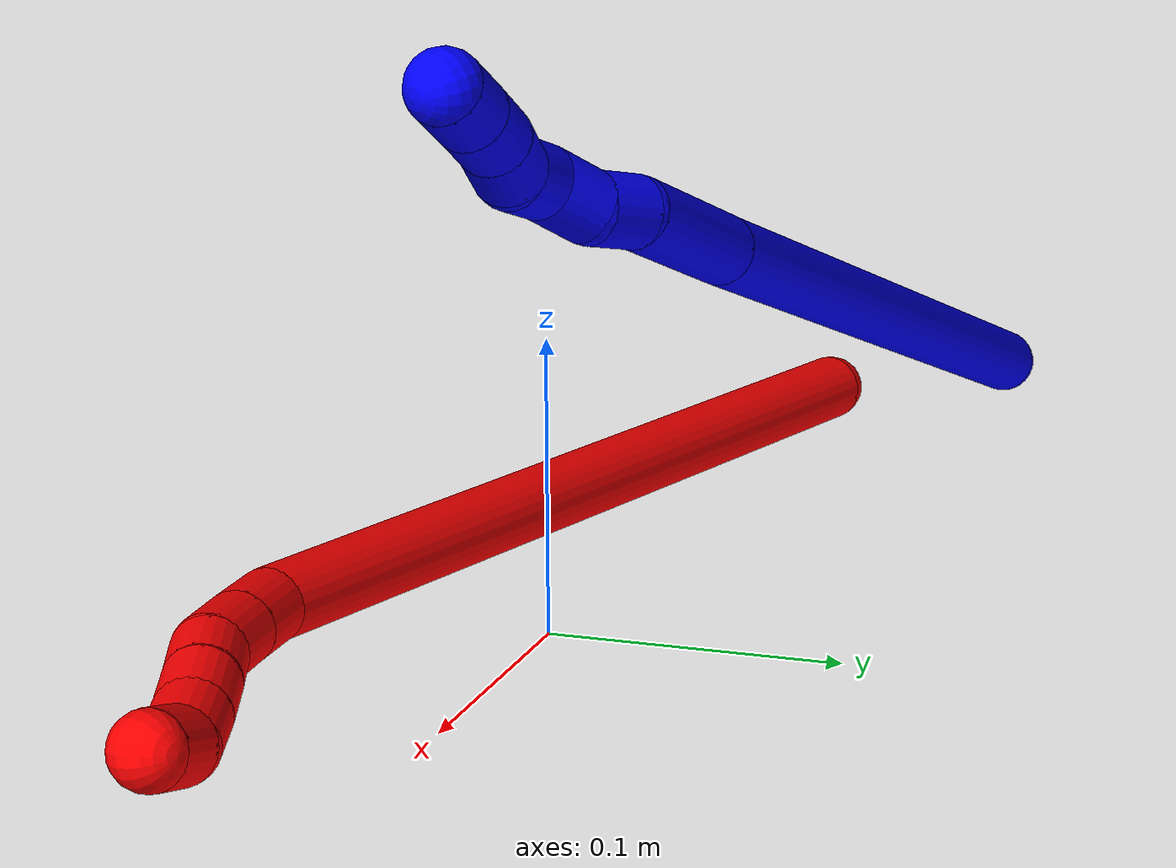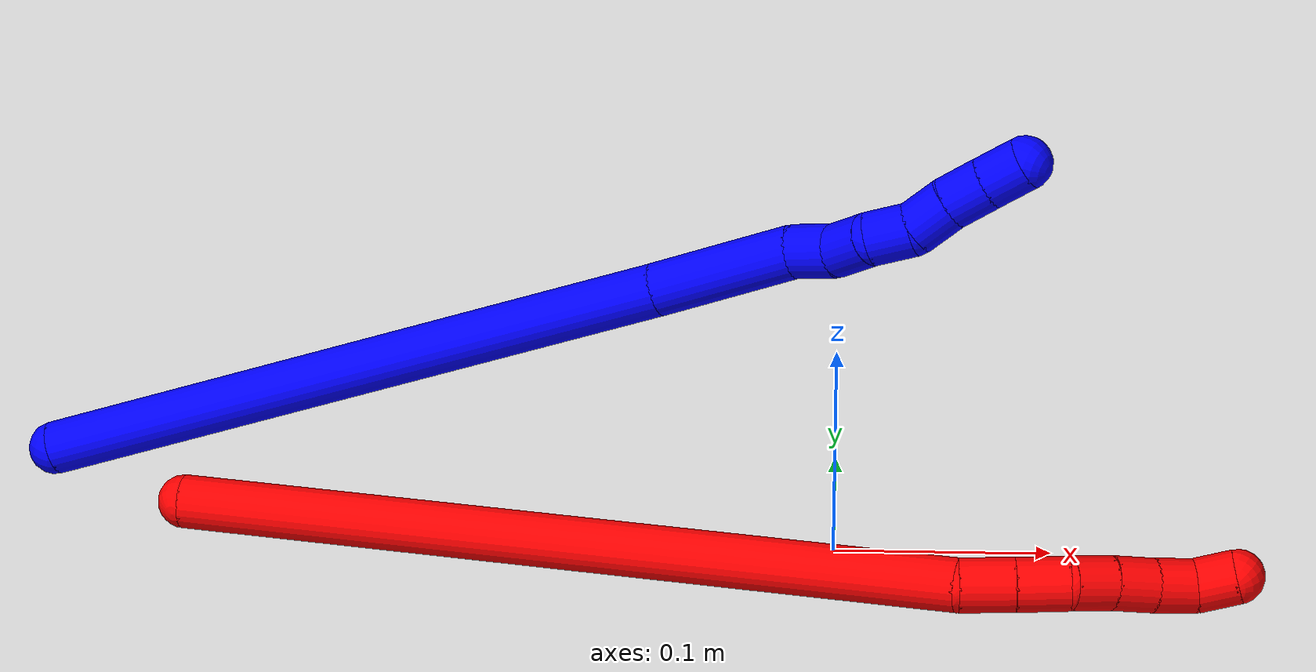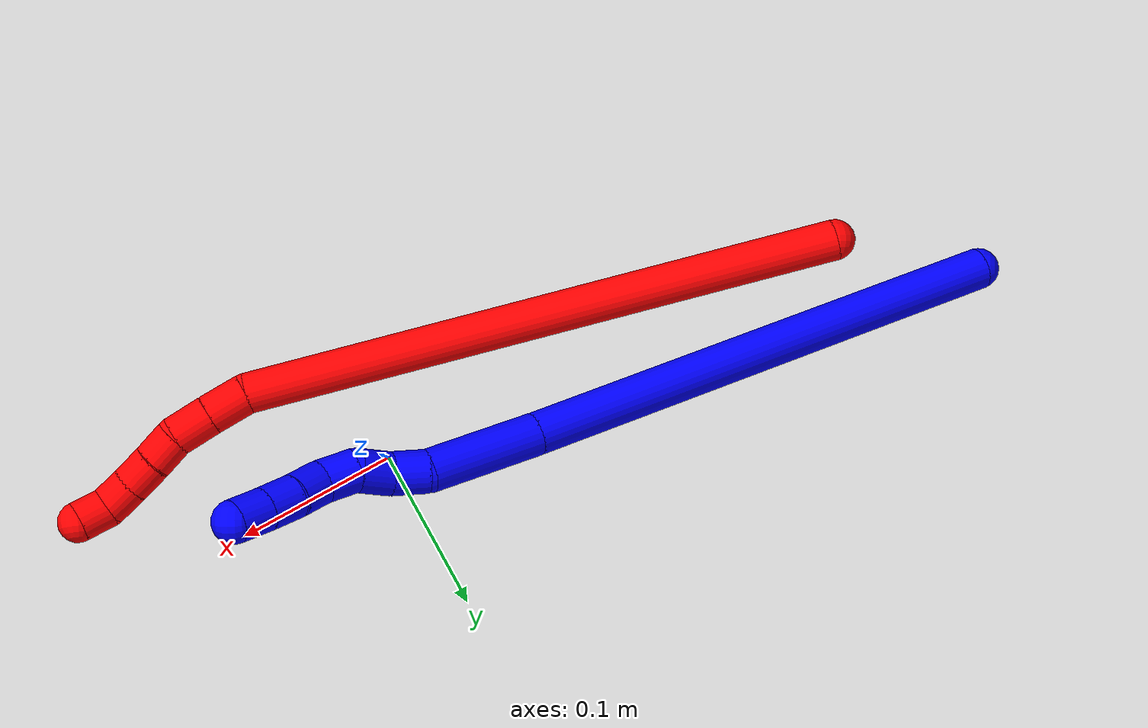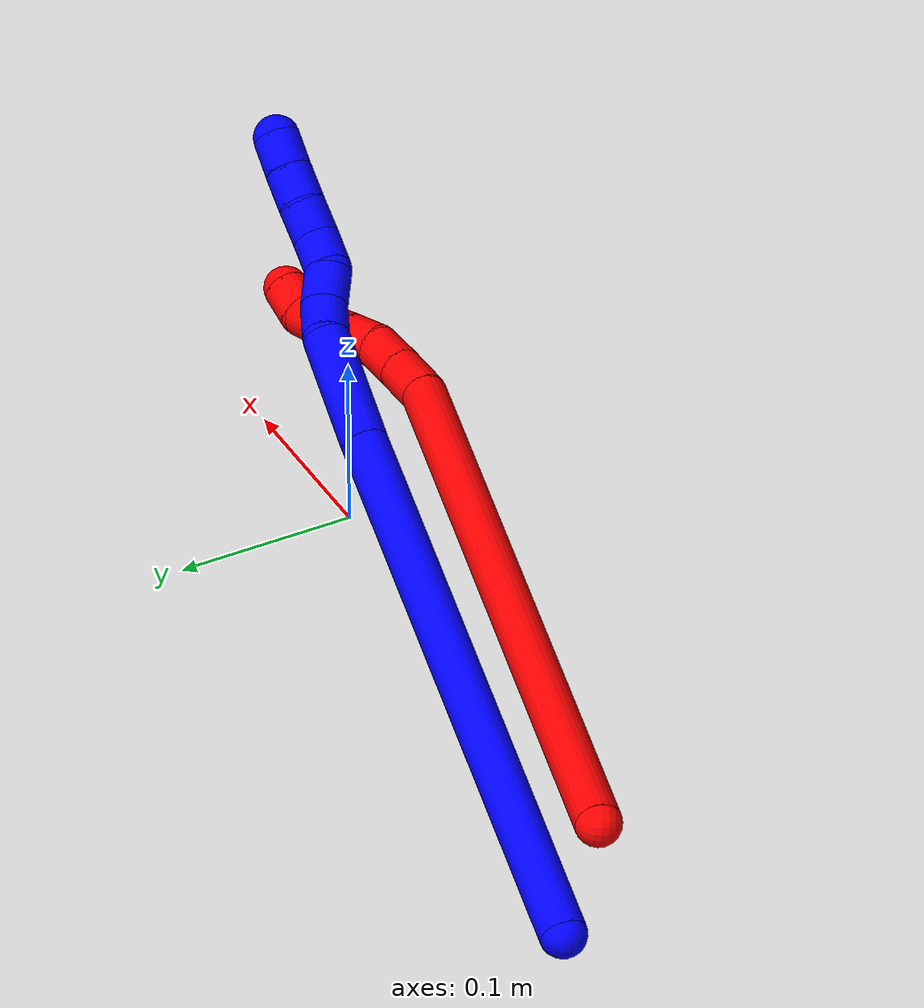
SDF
<sdf version="1.7">
 <world name="default">
  <plugin name="TubeGeneratorPlugin" filename="libtube_generator_plugin.so"/>
  <model name="photoneo_s_sensor">
   <static>1</static>
   <pose>0 0 2 1.57079 1.57079 3.14159</pose>
   <link name="link">
    <inertial><mass>0.1</mass></inertial>
    <sensor name="sensor" type="depth">
     <update_rate>30</update_rate>
     <camera>
      <horizontal_fov>1.22</horizontal_fov>
      <image><width>1920</width><height>1200</height><format>B8G8R8</format></image>
      <clip><near>0.1</near><far>4</far></clip>
      <depth_camera><output>points</output></depth_camera>
     </camera>
     <plugin name="camera_plugin" filename="libgazebo_ros_depth_camera.so">
      <baseline>0.2</baseline>
      <alwaysOn>1</alwaysOn>
      <updateRate>0.0</updateRate>
      <cameraName>camera_ir</cameraName>
      <imageTopicName>/camera/color/image_raw</imageTopicName>
      <cameraInfoTopicName>/camera/color/camera_info</cameraInfoTopicName>
      <depthImageTopicName>/camera/depth/image_raw</depthImageTopicName>
      <depthImageCameraInfoTopicName>/camera/depth/camera_info</depthImageCameraInfoTopicName>
      <pointCloudTopicName>/camera/depth/points</pointCloudTopicName>
      <frameName>fr_optical</frameName>
      <pointCloudCutoff>0.1</pointCloudCutoff>
      <pointCloudCutoffMax>2.0</pointCloudCutoffMax>
      <distortionK1>0</distortionK1>
      <distortionK2>0</distortionK2>
      <distortionK3>0</distortionK3>
      <distortionT1>0</distortionT1>
      <distortionT2>0</distortionT2>
      <CxPrime>0</CxPrime>
      <Cx>0</Cx>
      <Cy>0</Cy>
      <focalLength>0</focalLength>
      <hackBaseline>0</hackBaseline>
     </plugin>
    </sensor>
   </link>
  </model>
  <gravity>0 0 -9.8</gravity>
  <magnetic_field>6e-06 2.3e-05 -4.2e-05</magnetic_field>
  <atmosphere type="adiabatic"/>
  <physics name="default_physics" default="0" type="ode">
   <max_step_size>0.003</max_step_size>
   <real_time_factor>1</real_time_factor>
   <real_time_update_rate>1000</real_time_update_rate>
   <max_contacts>10000</max_contacts>
   <ode>
    <solver>
     <type>quick</type>
     <iters>100</iters>
     <sor>1.3</sor>
     <use_dynamic_moi_rescaling>0</use_dynamic_moi_rescaling>
    </solver>
    <constraints>
     <contact_max_correcting_vel>0</contact_max_correcting_vel>
     <contact_surface_layer>0.001</contact_surface_layer>
     <cfm>0</cfm>
     <erp>0.2</erp>
    </constraints>
   </ode>
  </physics>
  <scene><ambient>0.4 0.4 0.4 1</ambient><background>0.7 0.7 0.7 1</background><shadows>0</shadows></scene>
  <audio><device>default</device></audio>
  <spherical_coordinates>
   <surface_model>EARTH_WGS84</surface_model>
   <latitude_deg>0</latitude_deg>
   <longitude_deg>0</longitude_deg>
   <elevation>0</elevation>
   <heading_deg>0</heading_deg>
  </spherical_coordinates>
  <model name="bin">
   <static>1</static>
   <link name="bottom">
    <collision name="collision-bottom">
     <pose>0 0 -0.01 0 -0 0</pose>
     <geometry><box><size>0.8 0.6 0.02</size></box></geometry>
     <surface>
      <friction><ode><mu>100</mu><mu2>100</mu2></ode></friction>
      <contact><collide_bitmask>65535</collide_bitmask></contact>
     </surface>
    </collision>
   </link>
   <link name="west_wall">
    <collision name="collision-west_wall">
     <pose>-0.41 0 0.1 0 -0 0</pose>
     <geometry><box><size>0.02 0.6 0.2</size></box></geometry>
     <surface>
      <friction><ode><mu>100</mu><mu2>100</mu2></ode></friction>
      <contact><collide_bitmask>65535</collide_bitmask></contact>
     </surface>
    </collision>
   </link>
   <link name="east_wall">
    <collision name="collision-east_wall">
     <pose>0.41 0 0.1 0 -0 0</pose>
     <geometry><box><size>0.02 0.6 0.2</size></box></geometry>
     <surface>
      <friction><ode><mu>100</mu><mu2>100</mu2></ode></friction>
      <contact><collide_bitmask>65535</collide_bitmask></contact>
     </surface>
    </collision>
   </link>
   <link name="south_wall">
    <collision name="collision-south_wall">
     <pose>0 -0.31 0.1 0 -0 0</pose>
     <geometry><box><size>0.8 0.02 0.2</size></box></geometry>
     <surface>
      <friction><ode><mu>100</mu><mu2>100</mu2></ode></friction>
      <contact><collide_bitmask>65535</collide_bitmask></contact>
     </surface>
    </collision>
   </link>
   <link name="north_wall">
    <collision name="collision-north_wall">
     <pose>0 0.31 0.1 0 -0 0</pose>
     <geometry><box><size>0.8 0.02 0.2</size></box></geometry>
     <surface>
      <friction><ode><mu>100</mu><mu2>100</mu2></ode></friction>
      <contact><collide_bitmask>65535</collide_bitmask></contact>
     </surface>
    </collision>
   </link>
  </model>
  <model name="1">
   <static>0</static>
   <link name="1">
    <collision name="collision-cylinder-e_1_1_4">
     <pose>0.090466 0.004668 -0.1244 -3.10409 0.628423 -3.0263</pose>
     <geometry><cylinder><radius>0.0125</radius><length>0.307774</length></cylinder></geometry>
     <surface>
      <friction><ode><mu>1.16</mu><mu2>1.16</mu2><slip1>0</slip1><slip2>0</slip2></ode></friction>
      <contact><ode><kp>1e+06</kp><kd>1</kd><max_vel>0</max_vel><min_depth>0.001</min_depth></ode></contact>
     </surface>
    </collision>
    <visual name="visual-cylinder-e_1_1_4">
     <pose>0.090466 0.004668 -0.1244 -3.10409 0.628423 -3.0263</pose>
     <geometry><cylinder><radius>0.0125</radius><length>0.307774</length></cylinder></geometry>
     <material><ambient>0 0 1 1</ambient></material>
    </visual>
    <collision name="collision-cylinder-e_2_4_5">
     <pose>0.201148 0.009302 -0.276242 3.14037 0.634947 3.13788</pose>
     <geometry><cylinder><radius>0.0125</radius><length>0.068168</length></cylinder></geometry>
     <surface>
      <friction><ode><mu>1.16</mu><mu2>1.16</mu2><slip1>0</slip1><slip2>0</slip2></ode></friction>
      <contact><ode><kp>1e+06</kp><kd>1</kd><max_vel>0</max_vel><min_depth>0.001</min_depth></ode></contact>
     </surface>
    </collision>
    <visual name="visual-cylinder-e_2_4_5">
     <pose>0.201148 0.009302 -0.276242 3.14037 0.634947 3.13788</pose>
     <geometry><cylinder><radius>0.0125</radius><length>0.068168</length></cylinder></geometry>
     <material><ambient>0 0 1 1</ambient></material>
    </visual>
    <collision name="collision-cylinder-e_3_5_6">
     <pose>0.225192 0.007736 -0.313687 2.98964 0.361619 2.35245</pose>
     <geometry><cylinder><radius>0.0125</radius><length>0.021639</length></cylinder></geometry>
     <surface>
      <friction><ode><mu>1.16</mu><mu2>1.16</mu2><slip1>0</slip1><slip2>0</slip2></ode></friction>
      <contact><ode><kp>1e+06</kp><kd>1</kd><max_vel>0</max_vel><min_depth>0.001</min_depth></ode></contact>
     </surface>
    </collision>
    <visual name="visual-cylinder-e_3_5_6">
     <pose>0.225192 0.007736 -0.313687 2.98964 0.361619 2.35245</pose>
     <geometry><cylinder><radius>0.0125</radius><length>0.021639</length></cylinder></geometry>
     <material><ambient>0 0 1 1</ambient></material>
    </visual>
    <collision name="collision-cylinder-e_4_6_7">
     <pose>0.234281 0.001813 -0.331917 2.65122 0.513606 1.61907</pose>
     <geometry><cylinder><radius>0.0125</radius><length>0.021414</length></cylinder></geometry>
     <surface>
      <friction><ode><mu>1.16</mu><mu2>1.16</mu2><slip1>0</slip1><slip2>0</slip2></ode></friction>
      <contact><ode><kp>1e+06</kp><kd>1</kd><max_vel>0</max_vel><min_depth>0.001</min_depth></ode></contact>
     </surface>
    </collision>
    <visual name="visual-cylinder-e_4_6_7">
     <pose>0.234281 0.001813 -0.331917 2.65122 0.513606 1.61907</pose>
     <geometry><cylinder><radius>0.0125</radius><length>0.021414</length></cylinder></geometry>
     <material><ambient>0 0 1 1</ambient></material>
    </visual>
    <collision name="collision-cylinder-e_5_7_8">
     <pose>0.245413 -0.002304 -0.348799 -3.1098 0.595793 -3.03813</pose>
     <geometry><cylinder><radius>0.0125</radius><length>0.020926</length></cylinder></geometry>
     <surface>
      <friction><ode><mu>1.16</mu><mu2>1.16</mu2><slip1>0</slip1><slip2>0</slip2></ode></friction>
      <contact><ode><kp>1e+06</kp><kd>1</kd><max_vel>0</max_vel><min_depth>0.001</min_depth></ode></contact>
     </surface>
    </collision>
    <visual name="visual-cylinder-e_5_7_8">
     <pose>0.245413 -0.002304 -0.348799 -3.1098 0.595793 -3.03813</pose>
     <geometry><cylinder><radius>0.0125</radius><length>0.020926</length></cylinder></geometry>
     <material><ambient>0 0 1 1</ambient></material>
    </visual>
    <collision name="collision-cylinder-e_6_8_9">
     <pose>0.259608 -0.002571 -0.363035 3.04466 0.978011 2.95979</pose>
     <geometry><cylinder><radius>0.0125</radius><length>0.020071</length></cylinder></geometry>
     <surface>
      <friction><ode><mu>1.16</mu><mu2>1.16</mu2><slip1>0</slip1><slip2>0</slip2></ode></friction>
      <contact><ode><kp>1e+06</kp><kd>1</kd><max_vel>0</max_vel><min_depth>0.001</min_depth></ode></contact>
     </surface>
    </collision>
    <visual name="visual-cylinder-e_6_8_9">
     <pose>0.259608 -0.002571 -0.363035 3.04466 0.978011 2.95979</pose>
     <geometry><cylinder><radius>0.0125</radius><length>0.020071</length></cylinder></geometry>
     <material><ambient>0 0 1 1</ambient></material>
    </visual>
    <collision name="collision-cylinder-e_7_9_10">
     <pose>0.275413 -0.003512 -0.37524 3.08156 0.845273 3.00827</pose>
     <geometry><cylinder><radius>0.0125</radius><length>0.020002</length></cylinder></geometry>
     <surface>
      <friction><ode><mu>1.16</mu><mu2>1.16</mu2><slip1>0</slip1><slip2>0</slip2></ode></friction>
      <contact><ode><kp>1e+06</kp><kd>1</kd><max_vel>0</max_vel><min_depth>0.001</min_depth></ode></contact>
     </surface>
    </collision>
    <visual name="visual-cylinder-e_7_9_10">
     <pose>0.275413 -0.003512 -0.37524 3.08156 0.845273 3.00827</pose>
     <geometry><cylinder><radius>0.0125</radius><length>0.020002</length></cylinder></geometry>
     <material><ambient>0 0 1 1</ambient></material>
    </visual>
    <collision name="collision-cylinder-e_8_10_2">
     <pose>0.29025 -0.004554 -0.388612 3.04644 0.826077 2.92515</pose>
     <geometry><cylinder><radius>0.0125</radius><length>0.020005</length></cylinder></geometry>
     <surface>
      <friction><ode><mu>1.16</mu><mu2>1.16</mu2><slip1>0</slip1><slip2>0</slip2></ode></friction>
      <contact><ode><kp>1e+06</kp><kd>1</kd><max_vel>0</max_vel><min_depth>0.001</min_depth></ode></contact>
     </surface>
    </collision>
    <visual name="visual-cylinder-e_8_10_2">
     <pose>0.29025 -0.004554 -0.388612 3.04644 0.826077 2.92515</pose>
     <geometry><cylinder><radius>0.0125</radius><length>0.020005</length></cylinder></geometry>
     <material><ambient>0 0 1 1</ambient></material>
    </visual>
    <collision name="collision-sphere-2">
     <pose>0.297604 -0.005198 -0.395361 0 -0 0</pose>
     <geometry><sphere><radius>0.0125</radius></sphere></geometry>
     <surface>
      <friction><ode><mu>1.16</mu><mu2>1.16</mu2><slip1>0</slip1><slip2>0</slip2></ode></friction>
      <contact><ode><kp>1e+06</kp><kd>1</kd><max_vel>0</max_vel><min_depth>0.001</min_depth></ode></contact>
     </surface>
    </collision>
    <visual name="visual-sphere-2">
     <pose>0.297604 -0.005198 -0.395361 0 -0 0</pose>
     <geometry><sphere><radius>0.0125</radius></sphere></geometry>
     <material><ambient>0 0 1 1</ambient></material>
    </visual>
    <collision name="collision-sphere-10">
     <pose>0.282895 -0.00391 -0.381864 0 -0 0</pose>
     <geometry><sphere><radius>0.0125</radius></sphere></geometry>
     <surface>
      <friction><ode><mu>1.16</mu><mu2>1.16</mu2><slip1>0</slip1><slip2>0</slip2></ode></friction>
      <contact><ode><kp>1e+06</kp><kd>1</kd><max_vel>0</max_vel><min_depth>0.001</min_depth></ode></contact>
     </surface>
    </collision>
    <visual name="visual-sphere-10">
     <pose>0.282895 -0.00391 -0.381864 0 -0 0</pose>
     <geometry><sphere><radius>0.0125</radius></sphere></geometry>
     <material><ambient>0 0 1 1</ambient></material>
    </visual>
    <collision name="collision-sphere-9">
     <pose>0.267931 -0.003114 -0.368616 0 -0 0</pose>
     <geometry><sphere><radius>0.0125</radius></sphere></geometry>
     <surface>
      <friction><ode><mu>1.16</mu><mu2>1.16</mu2><slip1>0</slip1><slip2>0</slip2></ode></friction>
      <contact><ode><kp>1e+06</kp><kd>1</kd><max_vel>0</max_vel><min_depth>0.001</min_depth></ode></contact>
     </surface>
    </collision>
    <visual name="visual-sphere-9">
     <pose>0.267931 -0.003114 -0.368616 0 -0 0</pose>
     <geometry><sphere><radius>0.0125</radius></sphere></geometry>
     <material><ambient>0 0 1 1</ambient></material>
    </visual>
    <collision name="collision-sphere-4">
     <pose>0.180931 0.009335 -0.248801 0 -0 0</pose>
     <geometry><sphere><radius>0.0125</radius></sphere></geometry>
     <surface>
      <friction><ode><mu>1.16</mu><mu2>1.16</mu2><slip1>0</slip1><slip2>0</slip2></ode></friction>
      <contact><ode><kp>1e+06</kp><kd>1</kd><max_vel>0</max_vel><min_depth>0.001</min_depth></ode></contact>
     </surface>
    </collision>
    <visual name="visual-sphere-4">
     <pose>0.180931 0.009335 -0.248801 0 -0 0</pose>
     <geometry><sphere><radius>0.0125</radius></sphere></geometry>
     <material><ambient>0 0 1 1</ambient></material>
    </visual>
    <collision name="collision-sphere-1">
     <geometry><sphere><radius>0.0125</radius></sphere></geometry>
     <surface>
      <friction><ode><mu>1.16</mu><mu2>1.16</mu2><slip1>0</slip1><slip2>0</slip2></ode></friction>
      <contact><ode><kp>1e+06</kp><kd>1</kd><max_vel>0</max_vel><min_depth>0.001</min_depth></ode></contact>
     </surface>
    </collision>
    <visual name="visual-sphere-1">
     <geometry><sphere><radius>0.0125</radius></sphere></geometry>
     <material><ambient>0 0 1 1</ambient></material>
    </visual>
    <collision name="collision-sphere-8">
     <pose>0.251284 -0.002029 -0.357455 0 -0 0</pose>
     <geometry><sphere><radius>0.0125</radius></sphere></geometry>
     <surface>
      <friction><ode><mu>1.16</mu><mu2>1.16</mu2><slip1>0</slip1><slip2>0</slip2></ode></friction>
      <contact><ode><kp>1e+06</kp><kd>1</kd><max_vel>0</max_vel><min_depth>0.001</min_depth></ode></contact>
     </surface>
    </collision>
    <visual name="visual-sphere-8">
     <pose>0.251284 -0.002029 -0.357455 0 -0 0</pose>
     <geometry><sphere><radius>0.0125</radius></sphere></geometry>
     <material><ambient>0 0 1 1</ambient></material>
    </visual>
    <collision name="collision-sphere-5">
     <pose>0.221364 0.009268 -0.303683 0 -0 0</pose>
     <geometry><sphere><radius>0.0125</radius></sphere></geometry>
     <surface>
      <friction><ode><mu>1.16</mu><mu2>1.16</mu2><slip1>0</slip1><slip2>0</slip2></ode></friction>
      <contact><ode><kp>1e+06</kp><kd>1</kd><max_vel>0</max_vel><min_depth>0.001</min_depth></ode></contact>
     </surface>
    </collision>
    <visual name="visual-sphere-5">
     <pose>0.221364 0.009268 -0.303683 0 -0 0</pose>
     <geometry><sphere><radius>0.0125</radius></sphere></geometry>
     <material><ambient>0 0 1 1</ambient></material>
    </visual>
    <collision name="collision-sphere-6">
     <pose>0.22902 0.006205 -0.32369 0 -0 0</pose>
     <geometry><sphere><radius>0.0125</radius></sphere></geometry>
     <surface>
      <friction><ode><mu>1.16</mu><mu2>1.16</mu2><slip1>0</slip1><slip2>0</slip2></ode></friction>
      <contact><ode><kp>1e+06</kp><kd>1</kd><max_vel>0</max_vel><min_depth>0.001</min_depth></ode></contact>
     </surface>
    </collision>
    <visual name="visual-sphere-6">
     <pose>0.22902 0.006205 -0.32369 0 -0 0</pose>
     <geometry><sphere><radius>0.0125</radius></sphere></geometry>
     <material><ambient>0 0 1 1</ambient></material>
    </visual>
    <collision name="collision-sphere-7">
     <pose>0.239541 -0.002579 -0.340143 0 -0 0</pose>
     <geometry><sphere><radius>0.0125</radius></sphere></geometry>
     <surface>
      <friction><ode><mu>1.16</mu><mu2>1.16</mu2><slip1>0</slip1><slip2>0</slip2></ode></friction>
      <contact><ode><kp>1e+06</kp><kd>1</kd><max_vel>0</max_vel><min_depth>0.001</min_depth></ode></contact>
     </surface>
    </collision>
    <visual name="visual-sphere-7">
     <pose>0.239541 -0.002579 -0.340143 0 -0 0</pose>
     <geometry><sphere><radius>0.0125</radius></sphere></geometry>
     <material><ambient>0 0 1 1</ambient></material>
    </visual>
    <inertial>
     <pose>0.146212 0.004031 -0.201758 0 -0 0</pose>
     <mass>0.5</mass>
     <inertia>
      <ixx>-0.002192</ixx>
      <ixy>0</ixy>
      <ixz>0</ixz>
      <iyy>0.002242</iyy>
      <iyz>0</iyz>
      <izz>-0.001562</izz>
     </inertia>
    </inertial>
   </link>
   <pose>-0.370538 0.072348 0.011495 -1.24541 -0.995326 0.797929</pose>
  </model>
  <model name="2">
   <static>0</static>
   <link name="2">
    <collision name="collision-cylinder-e_1_1_4">
     <pose>0.08505 -0.161905 0.026935 1.40595 0.478091 0.407298</pose>
     <geometry><cylinder><radius>0.0125</radius><length>0.369714</length></cylinder></geometry>
     <surface>
      <friction><ode><mu>1.16</mu><mu2>1.16</mu2><slip1>0</slip1><slip2>0</slip2></ode></friction>
      <contact><ode><kp>1e+06</kp><kd>1</kd><max_vel>0</max_vel><min_depth>0.001</min_depth></ode></contact>
     </surface>
    </collision>
    <visual name="visual-cylinder-e_1_1_4">
     <pose>0.08505 -0.161905 0.026935 1.40595 0.478091 0.407298</pose>
     <geometry><cylinder><radius>0.0125</radius><length>0.369714</length></cylinder></geometry>
     <material><ambient>1 0 0 1</ambient></material>
    </visual>
    <collision name="collision-cylinder-e_2_4_5">
     <pose>0.17602 -0.333928 0.059091 1.09438 0.47946 0.295666</pose>
     <geometry><cylinder><radius>0.0125</radius><length>0.025668</length></cylinder></geometry>
     <surface>
      <friction><ode><mu>1.16</mu><mu2>1.16</mu2><slip1>0</slip1><slip2>0</slip2></ode></friction>
      <contact><ode><kp>1e+06</kp><kd>1</kd><max_vel>0</max_vel><min_depth>0.001</min_depth></ode></contact>
     </surface>
    </collision>
    <visual name="visual-cylinder-e_2_4_5">
     <pose>0.17602 -0.333928 0.059091 1.09438 0.47946 0.295666</pose>
     <geometry><cylinder><radius>0.0125</radius><length>0.025668</length></cylinder></geometry>
     <material><ambient>1 0 0 1</ambient></material>
    </visual>
    <collision name="collision-cylinder-e_3_5_6">
     <pose>0.187515 -0.353588 0.069673 1.05897 0.471159 0.279125</pose>
     <geometry><cylinder><radius>0.0125</radius><length>0.024565</length></cylinder></geometry>
     <surface>
      <friction><ode><mu>1.16</mu><mu2>1.16</mu2><slip1>0</slip1><slip2>0</slip2></ode></friction>
      <contact><ode><kp>1e+06</kp><kd>1</kd><max_vel>0</max_vel><min_depth>0.001</min_depth></ode></contact>
     </surface>
    </collision>
    <visual name="visual-cylinder-e_3_5_6">
     <pose>0.187515 -0.353588 0.069673 1.05897 0.471159 0.279125</pose>
     <geometry><cylinder><radius>0.0125</radius><length>0.024565</length></cylinder></geometry>
     <material><ambient>1 0 0 1</ambient></material>
    </visual>
    <collision name="collision-cylinder-e_4_6_7">
     <pose>0.198386 -0.368787 0.081355 0.729966 0.558023 0.218065</pose>
     <geometry><cylinder><radius>0.0125</radius><length>0.020001</length></cylinder></geometry>
     <surface>
      <friction><ode><mu>1.16</mu><mu2>1.16</mu2><slip1>0</slip1><slip2>0</slip2></ode></friction>
      <contact><ode><kp>1e+06</kp><kd>1</kd><max_vel>0</max_vel><min_depth>0.001</min_depth></ode></contact>
     </surface>
    </collision>
    <visual name="visual-cylinder-e_4_6_7">
     <pose>0.198386 -0.368787 0.081355 0.729966 0.558023 0.218065</pose>
     <geometry><cylinder><radius>0.0125</radius><length>0.020001</length></cylinder></geometry>
     <material><ambient>1 0 0 1</ambient></material>
    </visual>
    <collision name="collision-cylinder-e_5_7_8">
     <pose>0.209549 -0.380039 0.093571 0.75926 0.625362 0.256555</pose>
     <geometry><cylinder><radius>0.0125</radius><length>0.020048</length></cylinder></geometry>
     <surface>
      <friction><ode><mu>1.16</mu><mu2>1.16</mu2><slip1>0</slip1><slip2>0</slip2></ode></friction>
      <contact><ode><kp>1e+06</kp><kd>1</kd><max_vel>0</max_vel><min_depth>0.001</min_depth></ode></contact>
     </surface>
    </collision>
    <visual name="visual-cylinder-e_5_7_8">
     <pose>0.209549 -0.380039 0.093571 0.75926 0.625362 0.256555</pose>
     <geometry><cylinder><radius>0.0125</radius><length>0.020048</length></cylinder></geometry>
     <material><ambient>1 0 0 1</ambient></material>
    </visual>
    <collision name="collision-cylinder-e_6_8_9">
     <pose>0.220837 -0.391746 0.105235 0.814332 0.572725 0.252625</pose>
     <geometry><cylinder><radius>0.0125</radius><length>0.020002</length></cylinder></geometry>
     <surface>
      <friction><ode><mu>1.16</mu><mu2>1.16</mu2><slip1>0</slip1><slip2>0</slip2></ode></friction>
      <contact><ode><kp>1e+06</kp><kd>1</kd><max_vel>0</max_vel><min_depth>0.001</min_depth></ode></contact>
     </surface>
    </collision>
    <visual name="visual-cylinder-e_6_8_9">
     <pose>0.220837 -0.391746 0.105235 0.814332 0.572725 0.252625</pose>
     <geometry><cylinder><radius>0.0125</radius><length>0.020002</length></cylinder></geometry>
     <material><ambient>1 0 0 1</ambient></material>
    </visual>
    <collision name="collision-cylinder-e_7_9_2">
     <pose>0.228567 -0.406774 0.114903 1.15851 0.233125 0.152885</pose>
     <geometry><cylinder><radius>0.0125</radius><length>0.020003</length></cylinder></geometry>
     <surface>
      <friction><ode><mu>1.16</mu><mu2>1.16</mu2><slip1>0</slip1><slip2>0</slip2></ode></friction>
      <contact><ode><kp>1e+06</kp><kd>1</kd><max_vel>0</max_vel><min_depth>0.001</min_depth></ode></contact>
     </surface>
    </collision>
    <visual name="visual-cylinder-e_7_9_2">
     <pose>0.228567 -0.406774 0.114903 1.15851 0.233125 0.152885</pose>
     <geometry><cylinder><radius>0.0125</radius><length>0.020003</length></cylinder></geometry>
     <material><ambient>1 0 0 1</ambient></material>
    </visual>
    <collision name="collision-sphere-2">
     <pose>0.230878 -0.41569 0.118802 0 -0 0</pose>
     <geometry><sphere><radius>0.0125</radius></sphere></geometry>
     <surface>
      <friction><ode><mu>1.16</mu><mu2>1.16</mu2><slip1>0</slip1><slip2>0</slip2></ode></friction>
      <contact><ode><kp>1e+06</kp><kd>1</kd><max_vel>0</max_vel><min_depth>0.001</min_depth></ode></contact>
     </surface>
    </collision>
    <visual name="visual-sphere-2">
     <pose>0.230878 -0.41569 0.118802 0 -0 0</pose>
     <geometry><sphere><radius>0.0125</radius></sphere></geometry>
     <material><ambient>1 0 0 1</ambient></material>
    </visual>
    <collision name="collision-sphere-9">
     <pose>0.226257 -0.397859 0.111004 0 -0 0</pose>
     <geometry><sphere><radius>0.0125</radius></sphere></geometry>
     <surface>
      <friction><ode><mu>1.16</mu><mu2>1.16</mu2><slip1>0</slip1><slip2>0</slip2></ode></friction>
      <contact><ode><kp>1e+06</kp><kd>1</kd><max_vel>0</max_vel><min_depth>0.001</min_depth></ode></contact>
     </surface>
    </collision>
    <visual name="visual-sphere-9">
     <pose>0.226257 -0.397859 0.111004 0 -0 0</pose>
     <geometry><sphere><radius>0.0125</radius></sphere></geometry>
     <material><ambient>1 0 0 1</ambient></material>
    </visual>
    <collision name="collision-sphere-4">
     <pose>0.1701 -0.323809 0.053869 0 -0 0</pose>
     <geometry><sphere><radius>0.0125</radius></sphere></geometry>
     <surface>
      <friction><ode><mu>1.16</mu><mu2>1.16</mu2><slip1>0</slip1><slip2>0</slip2></ode></friction>
      <contact><ode><kp>1e+06</kp><kd>1</kd><max_vel>0</max_vel><min_depth>0.001</min_depth></ode></contact>
     </surface>
    </collision>
    <visual name="visual-sphere-4">
     <pose>0.1701 -0.323809 0.053869 0 -0 0</pose>
     <geometry><sphere><radius>0.0125</radius></sphere></geometry>
     <material><ambient>1 0 0 1</ambient></material>
    </visual>
    <collision name="collision-sphere-1">
     <geometry><sphere><radius>0.0125</radius></sphere></geometry>
     <surface>
      <friction><ode><mu>1.16</mu><mu2>1.16</mu2><slip1>0</slip1><slip2>0</slip2></ode></friction>
      <contact><ode><kp>1e+06</kp><kd>1</kd><max_vel>0</max_vel><min_depth>0.001</min_depth></ode></contact>
     </surface>
    </collision>
    <visual name="visual-sphere-1">
     <geometry><sphere><radius>0.0125</radius></sphere></geometry>
     <material><ambient>1 0 0 1</ambient></material>
    </visual>
    <collision name="collision-sphere-8">
     <pose>0.215417 -0.385633 0.099466 0 -0 0</pose>
     <geometry><sphere><radius>0.0125</radius></sphere></geometry>
     <surface>
      <friction><ode><mu>1.16</mu><mu2>1.16</mu2><slip1>0</slip1><slip2>0</slip2></ode></friction>
      <contact><ode><kp>1e+06</kp><kd>1</kd><max_vel>0</max_vel><min_depth>0.001</min_depth></ode></contact>
     </surface>
    </collision>
    <visual name="visual-sphere-8">
     <pose>0.215417 -0.385633 0.099466 0 -0 0</pose>
     <geometry><sphere><radius>0.0125</radius></sphere></geometry>
     <material><ambient>1 0 0 1</ambient></material>
    </visual>
    <collision name="collision-sphere-5">
     <pose>0.18194 -0.344047 0.064313 0 -0 0</pose>
     <geometry><sphere><radius>0.0125</radius></sphere></geometry>
     <surface>
      <friction><ode><mu>1.16</mu><mu2>1.16</mu2><slip1>0</slip1><slip2>0</slip2></ode></friction>
      <contact><ode><kp>1e+06</kp><kd>1</kd><max_vel>0</max_vel><min_depth>0.001</min_depth></ode></contact>
     </surface>
    </collision>
    <visual name="visual-sphere-5">
     <pose>0.18194 -0.344047 0.064313 0 -0 0</pose>
     <geometry><sphere><radius>0.0125</radius></sphere></geometry>
     <material><ambient>1 0 0 1</ambient></material>
    </visual>
    <collision name="collision-sphere-6">
     <pose>0.193091 -0.36313 0.075033 0 -0 0</pose>
     <geometry><sphere><radius>0.0125</radius></sphere></geometry>
     <surface>
      <friction><ode><mu>1.16</mu><mu2>1.16</mu2><slip1>0</slip1><slip2>0</slip2></ode></friction>
      <contact><ode><kp>1e+06</kp><kd>1</kd><max_vel>0</max_vel><min_depth>0.001</min_depth></ode></contact>
     </surface>
    </collision>
    <visual name="visual-sphere-6">
     <pose>0.193091 -0.36313 0.075033 0 -0 0</pose>
     <geometry><sphere><radius>0.0125</radius></sphere></geometry>
     <material><ambient>1 0 0 1</ambient></material>
    </visual>
    <collision name="collision-sphere-7">
     <pose>0.203681 -0.374444 0.087676 0 -0 0</pose>
     <geometry><sphere><radius>0.0125</radius></sphere></geometry>
     <surface>
      <friction><ode><mu>1.16</mu><mu2>1.16</mu2><slip1>0</slip1><slip2>0</slip2></ode></friction>
      <contact><ode><kp>1e+06</kp><kd>1</kd><max_vel>0</max_vel><min_depth>0.001</min_depth></ode></contact>
     </surface>
    </collision>
    <visual name="visual-sphere-7">
     <pose>0.203681 -0.374444 0.087676 0 -0 0</pose>
     <geometry><sphere><radius>0.0125</radius></sphere></geometry>
     <material><ambient>1 0 0 1</ambient></material>
    </visual>
    <inertial>
     <pose>0.115453 -0.216166 0.042185 0 -0 0</pose>
     <mass>0.5</mass>
     <inertia>
      <ixx>0.00496</ixx>
      <ixy>0</ixy>
      <ixz>0</ixz>
      <iyy>0.002859</iyy>
      <iyz>0</iyz>
      <izz>0.001769</izz>
     </inertia>
    </inertial>
   </link>
   <pose>-0.302479 0.014868 0.012065 -1.31298 1.0695 -0.162329</pose>
  </model>
 </world>
</sdf>
